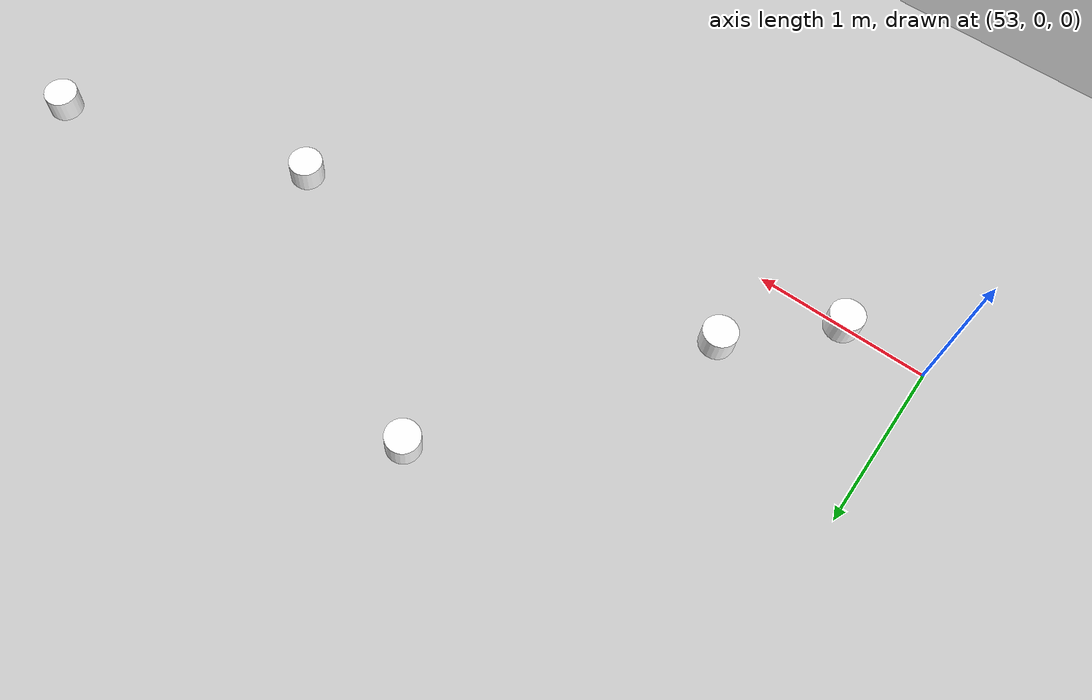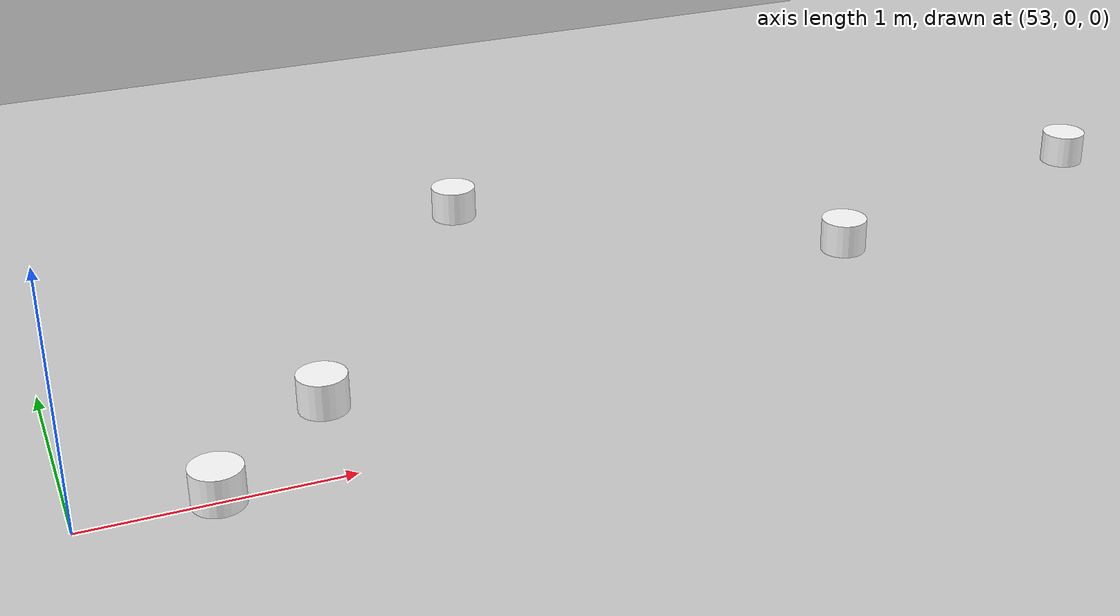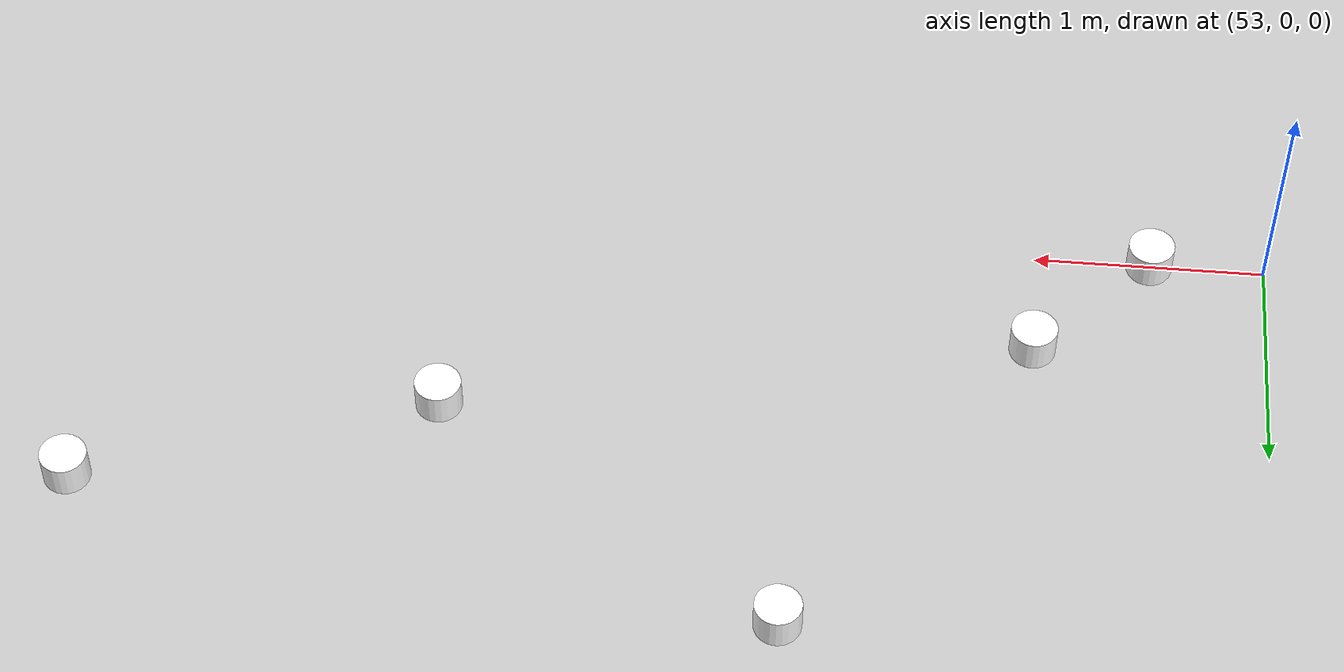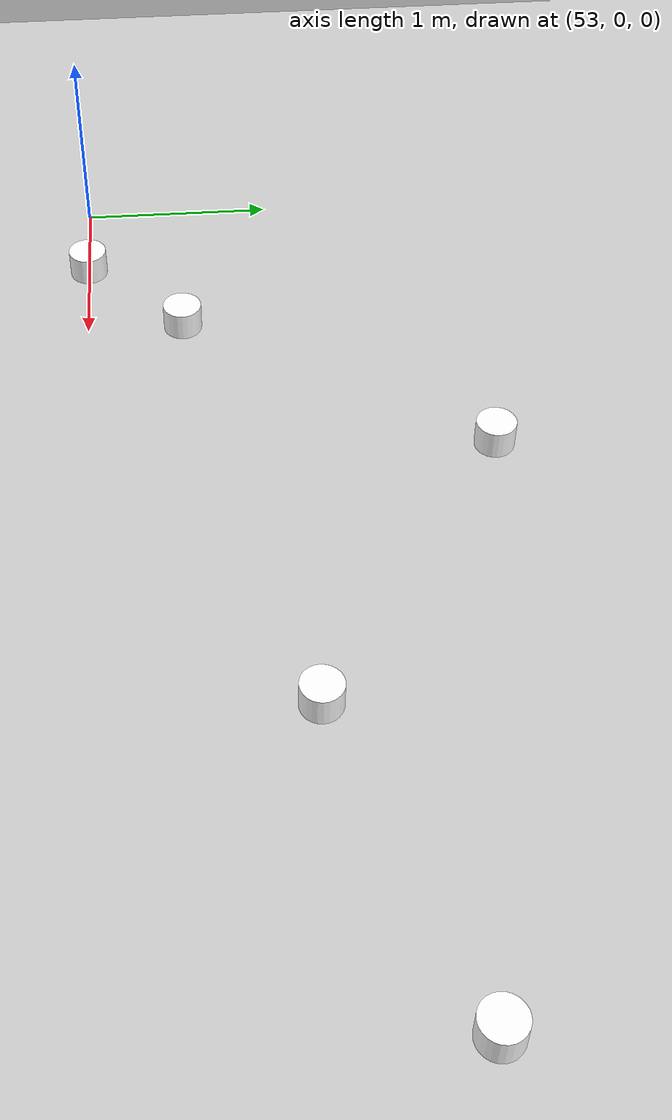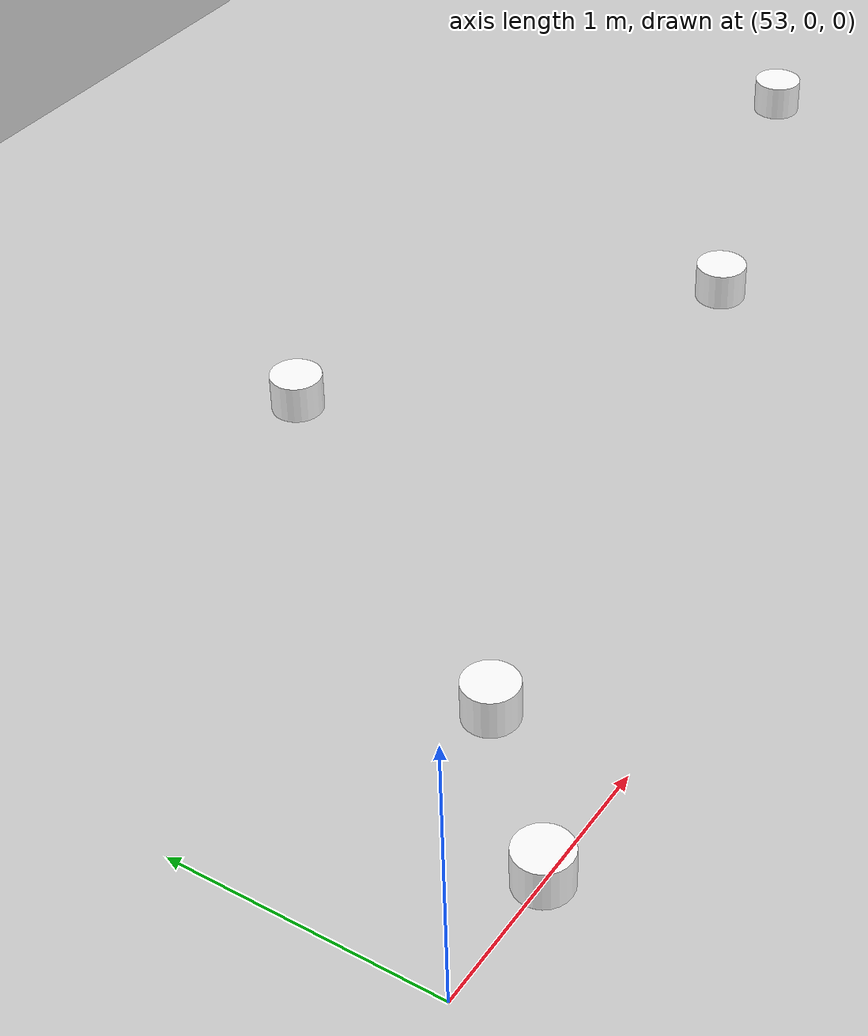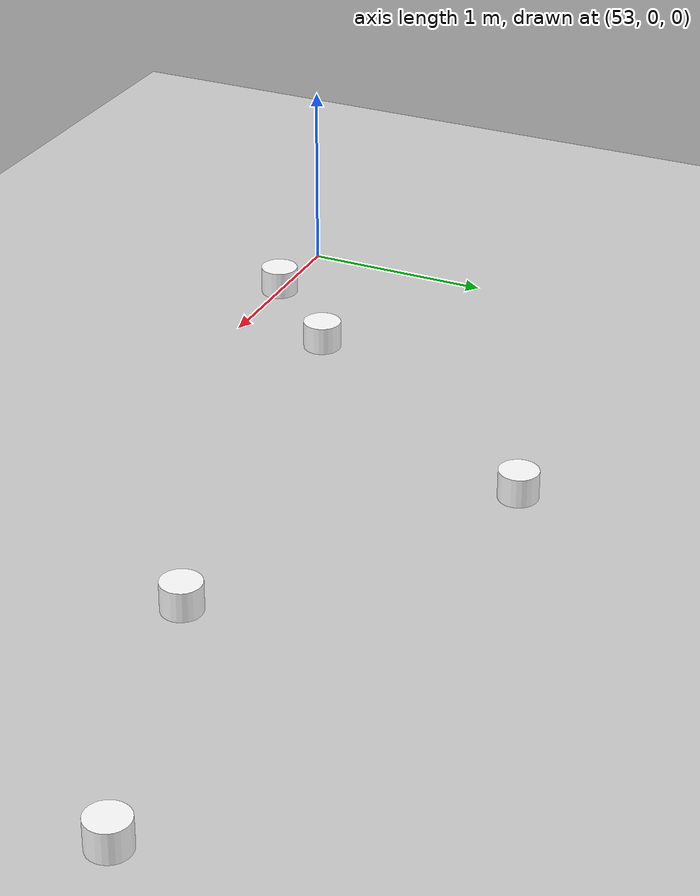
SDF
<?xml version="1.0" ?>
<sdf version="1.6">
  <world name="default">
    <plugin name="gazebo_ros_init" filename="libgazebo_ros_init.so"/>
    <plugin name="gazebo_ros_state" filename="libgazebo_ros_state.so"/>

    <include>
      <uri>model://sun</uri>
    </include>

    <include>
      <uri>model://ground_plane</uri>
    </include>

    <!-- 白筒1: Gazebo (53.5, 0.0) → NED x≈-1.0, y≈52.5 -->
    <model name="scout_cylinder_1">
      <pose>53.5 0.0 0.075 0 0 0</pose>
      <link name="cylinder1_link">
        <inertial><mass>0.3</mass><inertia><ixx>0.005</ixx><ixy>0</ixy><ixz>0</ixz><iyy>0.005</iyy><iyz>0</iyz><izz>0.005</izz></inertia></inertial>
        <collision name="cylinder1_collision"><geometry><cylinder><radius>0.10</radius><length>0.15</length></cylinder></geometry></collision>
        <visual name="cylinder1_visual"><geometry><cylinder><radius>0.10</radius><length>0.15</length></cylinder></geometry><material><ambient>1 1 1 1</ambient><diffuse>1 1 1 1</diffuse></material></visual>
      </link>
    </model>

    <!-- 白筒2: Gazebo (55.0, 2.0) → NED x≈1.0, y≈54.0 -->
    <model name="scout_cylinder_2">
      <pose>55.0 2.0 0.075 0 0 0</pose>
      <link name="cylinder2_link">
        <inertial><mass>0.3</mass><inertia><ixx>0.005</ixx><ixy>0</ixy><ixz>0</ixz><iyy>0.005</iyy><iyz>0</iyz><izz>0.005</izz></inertia></inertial>
        <collision name="cylinder2_collision"><geometry><cylinder><radius>0.10</radius><length>0.15</length></cylinder></geometry></collision>
        <visual name="cylinder2_visual"><geometry><cylinder><radius>0.10</radius><length>0.15</length></cylinder></geometry><material><ambient>1 1 1 1</ambient><diffuse>1 1 1 1</diffuse></material></visual>
      </link>
    </model>

    <!-- 白筒3: Gazebo (56.5, 1.0) → NED x≈0.0, y≈55.5 -->
    <model name="scout_cylinder_3">
      <pose>56.5 1.0 0.075 0 0 0</pose>
      <link name="cylinder3_link">
        <inertial><mass>0.3</mass><inertia><ixx>0.005</ixx><ixy>0</ixy><ixz>0</ixz><iyy>0.005</iyy><iyz>0</iyz><izz>0.005</izz></inertia></inertial>
        <collision name="cylinder3_collision"><geometry><cylinder><radius>0.10</radius><length>0.15</length></cylinder></geometry></collision>
        <visual name="cylinder3_visual"><geometry><cylinder><radius>0.10</radius><length>0.15</length></cylinder></geometry><material><ambient>1 1 1 1</ambient><diffuse>1 1 1 1</diffuse></material></visual>
      </link>
    </model>

    <!-- 白筒4: Gazebo (58.0, 1.5) → NED x≈0.5, y≈57.0 -->
    <model name="scout_cylinder_4">
      <pose>58.0 1.5 0.075 0 0 0</pose>
      <link name="cylinder4_link">
        <inertial><mass>0.3</mass><inertia><ixx>0.005</ixx><ixy>0</ixy><ixz>0</ixz><iyy>0.005</iyy><iyz>0</iyz><izz>0.005</izz></inertia></inertial>
        <collision name="cylinder4_collision"><geometry><cylinder><radius>0.10</radius><length>0.15</length></cylinder></geometry></collision>
        <visual name="cylinder4_visual"><geometry><cylinder><radius>0.10</radius><length>0.15</length></cylinder></geometry><material><ambient>1 1 1 1</ambient><diffuse>1 1 1 1</diffuse></material></visual>
      </link>
    </model>

    <!-- 白筒5: Gazebo (54.0, 0.5) → NED x≈-0.5, y≈53.0 -->
    <model name="scout_cylinder_5">
      <pose>54.0 0.5 0.075 0 0 0</pose>
      <link name="cylinder5_link">
        <inertial><mass>0.3</mass><inertia><ixx>0.005</ixx><ixy>0</ixy><ixz>0</ixz><iyy>0.005</iyy><iyz>0</iyz><izz>0.005</izz></inertia></inertial>
        <collision name="cylinder5_collision"><geometry><cylinder><radius>0.10</radius><length>0.15</length></cylinder></geometry></collision>
        <visual name="cylinder5_visual"><geometry><cylinder><radius>0.10</radius><length>0.15</length></cylinder></geometry><material><ambient>1 1 1 1</ambient><diffuse>1 1 1 1</diffuse></material></visual>
      </link>
    </model>

  </world>
</sdf>
